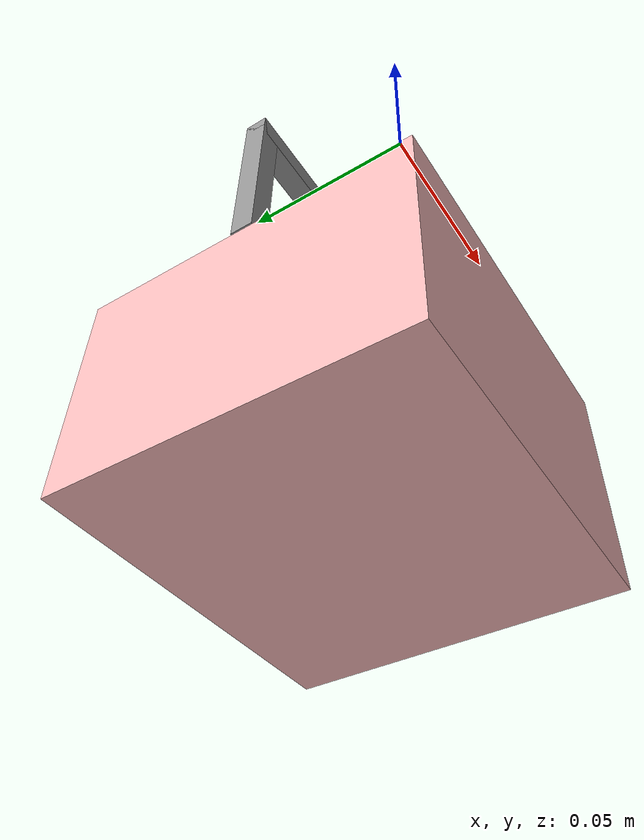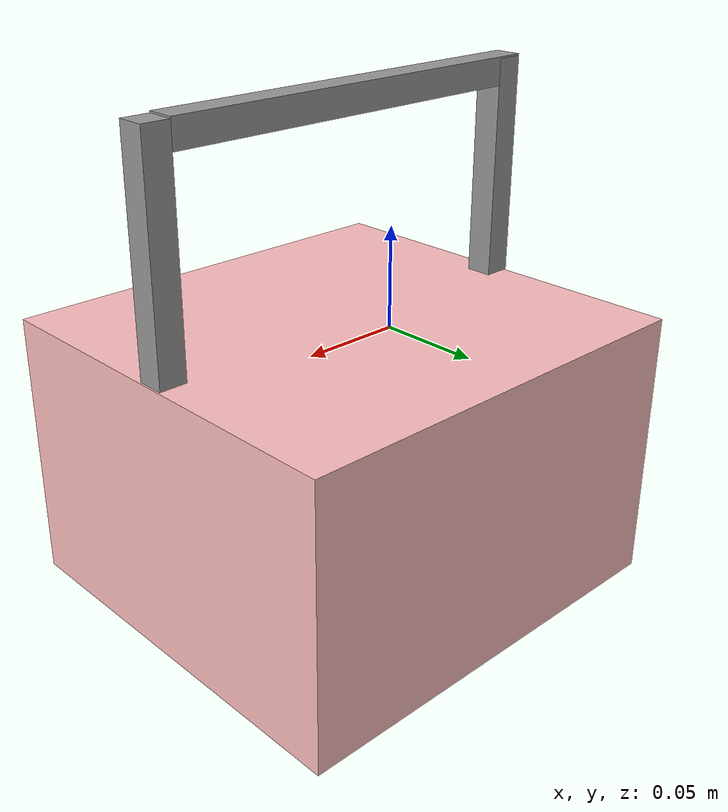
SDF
<?xml version='1.0'?>
<sdf version='1.7'>
  <model name='brain_coral'>
    <link name='link_0'>
      <inertial>
        <mass>1</mass>
        <inertia>
          <ixx>0.166667</ixx>
          <ixy>0</ixy>
          <ixz>0</ixz>
          <iyy>0.166667</iyy>
          <iyz>0</iyz>
          <izz>0.166667</izz>
        </inertia>
        <pose>0 0 0 0 -0 0</pose>
      </inertial>
      <pose>0.134339 0.085271 0 0 -0 0</pose>
      <gravity>1</gravity>
      <self_collide>0</self_collide>
      <kinematic>0</kinematic>
      <enable_wind>0</enable_wind>
      <visual name='visual_2'>
        <pose>-0.03 0 0.1356 0 -0 0</pose>
        <geometry>
          <box>
            <size>0.15 0.01 0.01</size>
          </box>
        </geometry>
        <material>
          <lighting>1</lighting>
          <script>
            <uri>file://media/materials/scripts/gazebo.material</uri>
            <name>Gazebo/Grey</name>
          </script>
          <shader type='pixel'>
            <normal_map>__default__</normal_map>
          </shader>
          <ambient>0.3 0.3 0.3 1</ambient>
          <diffuse>0.7 0.7 0.7 1</diffuse>
          <specular>0.01 0.01 0.01 1</specular>
          <emissive>0 0 0 1</emissive>
        </material>
        <transparency>0</transparency>
        <cast_shadows>1</cast_shadows>
      </visual>
      <visual name='ModelPreview_7::link_0::visual_1'>
        <pose>0.05 0 0.1 0 -0 0</pose>
        <geometry>
          <box>
            <size>0.01 0.01 0.08</size>
          </box>
        </geometry>
        <material>
          <lighting>1</lighting>
          <script>
            <uri>file://media/materials/scripts/gazebo.material</uri>
            <name>Gazebo/Grey</name>
          </script>
          <shader type='pixel'>
            <normal_map>__default__</normal_map>
          </shader>
          <ambient>0.3 0.3 0.3 1</ambient>
          <diffuse>0.7 0.7 0.7 1</diffuse>
          <specular>0.01 0.01 0.01 1</specular>
          <emissive>0 0 0 1</emissive>
        </material>
        <transparency>0</transparency>
        <cast_shadows>1</cast_shadows>
      </visual>
      <visual name='visual_3'>
        <pose>-0.1 0 0.1 0 -0 0</pose>
        <geometry>
          <box>
            <size>0.01 0.01 0.08</size>
          </box>
        </geometry>
        <material>
          <lighting>1</lighting>
          <script>
            <uri>file://media/materials/scripts/gazebo.material</uri>
            <name>Gazebo/Grey</name>
          </script>
          <shader type='pixel'>
            <normal_map>__default__</normal_map>
          </shader>
          <ambient>0.3 0.3 0.3 1</ambient>
          <diffuse>0.7 0.7 0.7 1</diffuse>
          <specular>0.01 0.01 0.01 1</specular>
          <emissive>0 0 0 1</emissive>
        </material>
        <transparency>0</transparency>
        <cast_shadows>1</cast_shadows>
      </visual>
      <collision name='collision_2'>
        <laser_retro>0</laser_retro>
        <max_contacts>10</max_contacts>
        <pose>-0.03 0 0.135 0 -0 0</pose>
        <geometry>
          <box>
            <size>0.15 0.01 0.01</size>
          </box>
        </geometry>
        <surface>
          <friction>
            <ode>
              <mu>1</mu>
              <mu2>1</mu2>
              <fdir1>0 0 0</fdir1>
              <slip1>0</slip1>
              <slip2>0</slip2>
            </ode>
            <torsional>
              <coefficient>1</coefficient>
              <patch_radius>0</patch_radius>
              <surface_radius>0</surface_radius>
              <use_patch_radius>1</use_patch_radius>
              <ode>
                <slip>0</slip>
              </ode>
            </torsional>
          </friction>
          <bounce>
            <restitution_coefficient>0</restitution_coefficient>
            <threshold>1e+06</threshold>
          </bounce>
          <contact>
            <collide_without_contact>0</collide_without_contact>
            <collide_without_contact_bitmask>1</collide_without_contact_bitmask>
            <collide_bitmask>1</collide_bitmask>
            <ode>
              <soft_cfm>0</soft_cfm>
              <soft_erp>0.2</soft_erp>
              <kp>1e+13</kp>
              <kd>1</kd>
              <max_vel>0.01</max_vel>
              <min_depth>0</min_depth>
            </ode>
            <bullet>
              <split_impulse>1</split_impulse>
              <split_impulse_penetration_threshold>-0.01</split_impulse_penetration_threshold>
              <soft_cfm>0</soft_cfm>
              <soft_erp>0.2</soft_erp>
              <kp>1e+13</kp>
              <kd>1</kd>
            </bullet>
          </contact>
        </surface>
      </collision>
      <collision name='collision_3'>
        <laser_retro>0</laser_retro>
        <max_contacts>10</max_contacts>
        <pose>-0.1 0 0.1 0 -0 0</pose>
        <geometry>
          <box>
            <size>0.01 0.01 0.08</size>
          </box>
        </geometry>
        <surface>
          <friction>
            <ode>
              <mu>1</mu>
              <mu2>1</mu2>
              <fdir1>0 0 0</fdir1>
              <slip1>0</slip1>
              <slip2>0</slip2>
            </ode>
            <torsional>
              <coefficient>1</coefficient>
              <patch_radius>0</patch_radius>
              <surface_radius>0</surface_radius>
              <use_patch_radius>1</use_patch_radius>
              <ode>
                <slip>0</slip>
              </ode>
            </torsional>
          </friction>
          <bounce>
            <restitution_coefficient>0</restitution_coefficient>
            <threshold>1e+06</threshold>
          </bounce>
          <contact>
            <collide_without_contact>0</collide_without_contact>
            <collide_without_contact_bitmask>1</collide_without_contact_bitmask>
            <collide_bitmask>1</collide_bitmask>
            <ode>
              <soft_cfm>0</soft_cfm>
              <soft_erp>0.2</soft_erp>
              <kp>1e+13</kp>
              <kd>1</kd>
              <max_vel>0.01</max_vel>
              <min_depth>0</min_depth>
            </ode>
            <bullet>
              <split_impulse>1</split_impulse>
              <split_impulse_penetration_threshold>-0.01</split_impulse_penetration_threshold>
              <soft_cfm>0</soft_cfm>
              <soft_erp>0.2</soft_erp>
              <kp>1e+13</kp>
              <kd>1</kd>
            </bullet>
          </contact>
        </surface>
      </collision>
      <collision name='collision_1'>
        <laser_retro>0</laser_retro>
        <max_contacts>10</max_contacts>
        <pose>0.05 0 0.1 0 -0 0</pose>
        <geometry>
          <box>
            <size>0.01 0.01 0.08</size>
          </box>
        </geometry>
        <surface>
          <friction>
            <ode>
              <mu>1</mu>
              <mu2>1</mu2>
              <fdir1>0 0 0</fdir1>
              <slip1>0</slip1>
              <slip2>0</slip2>
            </ode>
            <torsional>
              <coefficient>1</coefficient>
              <patch_radius>0</patch_radius>
              <surface_radius>0</surface_radius>
              <use_patch_radius>1</use_patch_radius>
              <ode>
                <slip>0</slip>
              </ode>
            </torsional>
          </friction>
          <bounce>
            <restitution_coefficient>0</restitution_coefficient>
            <threshold>1e+06</threshold>
          </bounce>
          <contact>
            <collide_without_contact>0</collide_without_contact>
            <collide_without_contact_bitmask>1</collide_without_contact_bitmask>
            <collide_bitmask>1</collide_bitmask>
            <ode>
              <soft_cfm>0</soft_cfm>
              <soft_erp>0.2</soft_erp>
              <kp>1e+13</kp>
              <kd>1</kd>
              <max_vel>0.01</max_vel>
              <min_depth>0</min_depth>
            </ode>
            <bullet>
              <split_impulse>1</split_impulse>
              <split_impulse_penetration_threshold>-0.01</split_impulse_penetration_threshold>
              <soft_cfm>0</soft_cfm>
              <soft_erp>0.2</soft_erp>
              <kp>1e+13</kp>
              <kd>1</kd>
            </bullet>
          </contact>
        </surface>
      </collision>
    </link>
    <link name='link_1'>
      <inertial>
        <mass>1</mass>
        <inertia>
          <ixx>0.166667</ixx>
          <ixy>0</ixy>
          <ixz>0</ixz>
          <iyy>0.166667</iyy>
          <iyz>0</iyz>
          <izz>0.166667</izz>
        </inertia>
        <pose>0 0 0 0 -0 0</pose>
      </inertial>
      <pose>0.11 0.085 0.01 0.000218 -0 0</pose>
      <gravity>1</gravity>
      <self_collide>0</self_collide>
      <kinematic>0</kinematic>
      <enable_wind>0</enable_wind>
      <visual name='visual'>
        <pose>0 0 0 0 -0 0</pose>
        <geometry>
          <box>
            <size>0.16 0.15 0.1</size>
          </box>
        </geometry>
        <material>
          <lighting>1</lighting>
          <script>
            <uri>file://media/materials/scripts/gazebo.material</uri>
            <name>Gazebo/Grey</name>
          </script>
          <shader type='pixel'>
            <normal_map>__default__</normal_map>
          </shader>
          <ambient>1 0.75 0.75 1</ambient>
          <diffuse>1 0.75 0.75 1</diffuse>
          <specular>1 0.75 0.75 1</specular>
          <emissive>0 0 0 1</emissive>
        </material>
        <transparency>0</transparency>
        <cast_shadows>1</cast_shadows>
      </visual>
      <collision name='collision'>
        <laser_retro>0</laser_retro>
        <max_contacts>10</max_contacts>
        <pose>0 0 0 0 -0 0</pose>
        <geometry>
          <box>
            <size>0.16 0.15 0.1</size>
          </box>
        </geometry>
        <surface>
          <friction>
            <ode>
              <mu>1</mu>
              <mu2>1</mu2>
              <fdir1>0 0 0</fdir1>
              <slip1>0</slip1>
              <slip2>0</slip2>
            </ode>
            <torsional>
              <coefficient>1</coefficient>
              <patch_radius>0</patch_radius>
              <surface_radius>0</surface_radius>
              <use_patch_radius>1</use_patch_radius>
              <ode>
                <slip>0</slip>
              </ode>
            </torsional>
          </friction>
          <bounce>
            <restitution_coefficient>0</restitution_coefficient>
            <threshold>1e+06</threshold>
          </bounce>
          <contact>
            <collide_without_contact>0</collide_without_contact>
            <collide_without_contact_bitmask>1</collide_without_contact_bitmask>
            <collide_bitmask>1</collide_bitmask>
            <ode>
              <soft_cfm>0</soft_cfm>
              <soft_erp>0.2</soft_erp>
              <kp>1e+13</kp>
              <kd>1</kd>
              <max_vel>0.01</max_vel>
              <min_depth>0</min_depth>
            </ode>
            <bullet>
              <split_impulse>1</split_impulse>
              <split_impulse_penetration_threshold>-0.01</split_impulse_penetration_threshold>
              <soft_cfm>0</soft_cfm>
              <soft_erp>0.2</soft_erp>
              <kp>1e+13</kp>
              <kd>1</kd>
            </bullet>
          </contact>
        </surface>
      </collision>
    </link>
    <joint name='link_0_JOINT_0' type='fixed'>
      <parent>link_0</parent>
      <child>link_1</child>
      <pose>0 0 0 0 -0 0</pose>
      <physics>
        <ode>
          <limit>
            <cfm>0</cfm>
            <erp>0.2</erp>
          </limit>
          <suspension>
            <cfm>0</cfm>
            <erp>0.2</erp>
          </suspension>
        </ode>
      </physics>
    </joint>
    <static>0</static>
    <allow_auto_disable>1</allow_auto_disable>
  </model>
</sdf>
